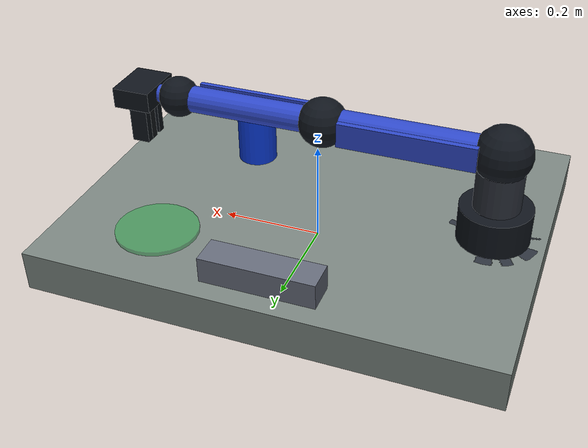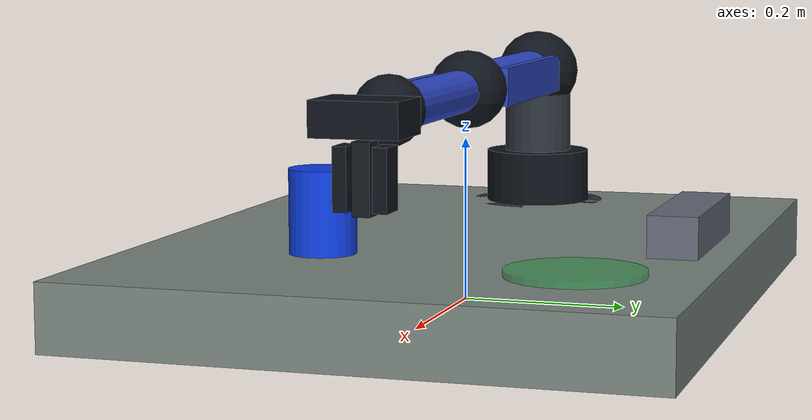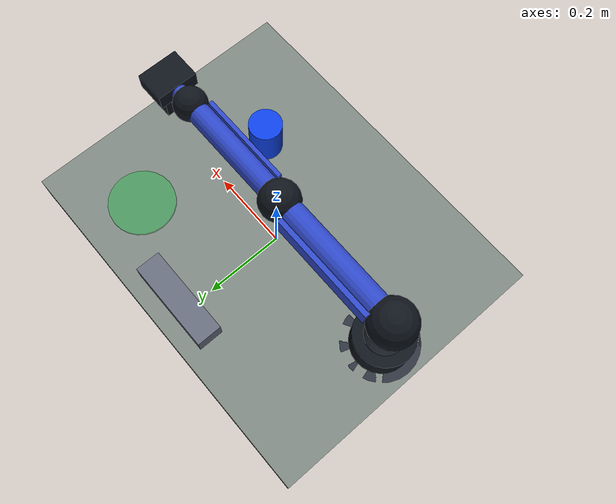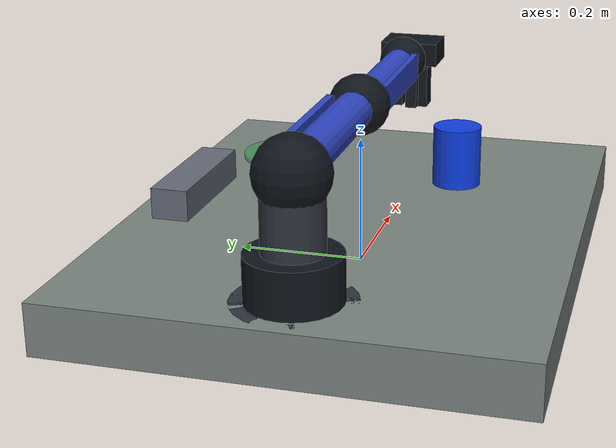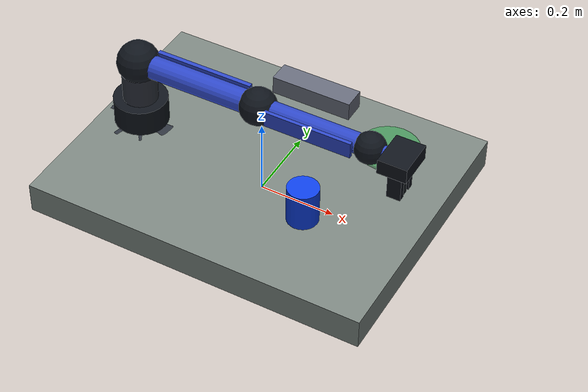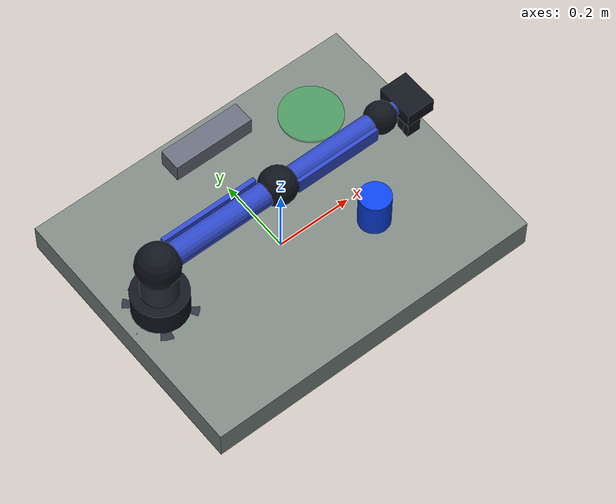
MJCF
<mujoco model="text2mujoco_arm_pick_place_108be4f5957f">
  <!--generator=text2mujoco-0.1.0; arm_schema=1.0; seed=11; run_id=108be4f5957f; contact_only_grasp=true-->
  <compiler angle="radian" coordinate="local" />
  <option gravity="0 0 -9.81" timestep="0.002" integrator="implicitfast" cone="elliptic" iterations="100" ls_iterations="50" />
  <default>
    <geom condim="4" friction="0.45 0.02 0.001" solref="0.003 1" solimp="0.95 0.99 0.0005" />
    <joint damping="2.2" armature="0.015" />
  </default>
  <asset>
    <material name="table_mat" rgba="0.48 0.52 0.5 1" />
    <material name="base_mat" rgba="0.18 0.2 0.24 1" />
    <material name="joint_mat" rgba="0.06 0.08 0.11 1" />
    <material name="arm_mat" rgba="0.18 0.28 0.78 1" />
    <material name="cube_mat" rgba="0.05 0.25 0.9 1" />
    <material name="target_mat" rgba="0.1 0.68 0.24 0.45" />
    <material name="finger_mat" rgba="0.08 0.1 0.12 1" />
  </asset>
  <worldbody>
    <light name="arm_key_light" pos="0 -1.8 2.5" dir="0 1 -1" />
    <camera name="arm_overview" pos="0 -1.45 0.95" xyaxes="1 0 0 0 0.55 0.83" />
    <geom name="table" type="box" pos="0 0 0.04" size="0.45 0.35 0.04" material="table_mat" />
    <body name="prop_shelf" pos="0 0.28 0.105">
      <geom name="prop_shelf_geom" type="box" size="0.11 0.03 0.025" rgba="0.4 0.42 0.48 1" friction="0.45 0.02 0.001" />
    </body>
    <body name="arm_target" pos="0.25 0.2 0.084">
      <geom name="arm_target_visual" type="cylinder" size="0.08 0.004" material="target_mat" contype="0" conaffinity="0" />
    </body>
    <body name="cube" pos="0.18 -0.12 0.13">
      <freejoint name="cube_free" />
      <geom name="cube_collision" type="cylinder" size="0.04 0.05" mass="0.12" material="cube_mat" friction="0.45 0.02 0.001" solref="0.002 1" solimp="0.96 0.995 0.0005" />
    </body>
    <body name="arm_base" pos="-0.35 0 0.08">
      <geom name="base_pedestal" type="cylinder" pos="0 0 -0.035" size="0.09 0.035" material="base_mat" contype="0" conaffinity="0" />
      <joint name="base_yaw" type="hinge" axis="0 0 1" range="-2.7 2.7" />
      <geom name="base_turntable" type="cylinder" pos="0 0 0.035" size="0.07 0.035" material="joint_mat" contype="0" conaffinity="0" />
      <geom name="base_column" type="cylinder" pos="0 0 0.09" size="0.045 0.09" material="base_mat" contype="0" conaffinity="0" />
      <body name="shoulder_link" pos="0 0 0.18">
        <geom name="shoulder_hub" type="sphere" size="0.055" material="joint_mat" contype="0" conaffinity="0" />
        <joint name="shoulder" type="hinge" axis="0 1 0" range="-1.4 1.6" />
        <geom name="upper_arm_link" type="capsule" fromto="0.035 0 0 0.305 0 0" size="0.03" material="arm_mat" contype="0" conaffinity="0" />
        <geom name="upper_arm_side_plate" type="box" pos="0.17 0.034 0" size="0.13076923 0.006 0.024" material="arm_mat" contype="0" conaffinity="0" />
        <body name="elbow_link" pos="0.34 0 0">
          <geom name="elbow_hub" type="sphere" size="0.048" material="joint_mat" contype="0" conaffinity="0" />
          <joint name="elbow" type="hinge" axis="0 1 0" range="-2.5 0.2" />
          <geom name="forearm_link" type="capsule" fromto="0.032 0 0 0.268 0 0" size="0.026" material="arm_mat" contype="0" conaffinity="0" />
          <geom name="forearm_side_plate" type="box" pos="0.15 -0.03 0" size="0.11538462 0.005 0.021" material="arm_mat" contype="0" conaffinity="0" />
          <body name="wrist_link" pos="0.3 0 0">
            <geom name="wrist_hub" type="sphere" size="0.04" material="joint_mat" contype="0" conaffinity="0" />
            <joint name="wrist" type="hinge" axis="0 1 0" range="-1.8 1.8" />
            <geom name="wrist_short_link" type="capsule" fromto="0.01 0 0 0.08 0 0" size="0.018" material="arm_mat" contype="0" conaffinity="0" />
            <body name="gripper_palm" pos="0.08 0 0">
              <geom name="gripper_palm_geom" type="box" size="0.038 0.05 0.02" material="joint_mat" contype="0" conaffinity="0" />
              <body name="left_finger_body" pos="0 0 -0.03">
                <joint name="left_finger" type="slide" axis="0 1 0" range="0.0175 0.055" />
                <geom name="left_finger_geom" type="box" pos="0 0 -0.035" size="0.014 0.01 0.04" material="finger_mat" contype="0" conaffinity="0" />
                <geom name="left_finger_pad" type="box" pos="0 0.0225 -0.035" size="0.018 0.008 0.035" material="joint_mat" friction="5 0.2 0.02" solref="0.002 1" solimp="0.96 0.995 0.0005" />
              </body>
              <body name="right_finger_body" pos="0 0 -0.03">
                <joint name="right_finger" type="slide" axis="0 -1 0" range="0.0175 0.055" />
                <geom name="right_finger_geom" type="box" pos="0 0 -0.035" size="0.014 0.01 0.04" material="finger_mat" contype="0" conaffinity="0" />
                <geom name="right_finger_pad" type="box" pos="0 -0.0225 -0.035" size="0.018 0.008 0.035" material="joint_mat" friction="5 0.2 0.02" solref="0.002 1" solimp="0.96 0.995 0.0005" />
              </body>
            </body>
          </body>
        </body>
      </body>
    </body>
  </worldbody>
  <actuator>
    <position name="move_base_yaw" joint="base_yaw" kp="180" kv="25" ctrllimited="true" ctrlrange="-2.7 2.7" forcelimited="true" forcerange="-140 140" />
    <position name="move_shoulder" joint="shoulder" kp="220" kv="35" ctrllimited="true" ctrlrange="-1.4 1.6" forcelimited="true" forcerange="-140 140" />
    <position name="move_elbow" joint="elbow" kp="190" kv="30" ctrllimited="true" ctrlrange="-2.5 0.2" forcelimited="true" forcerange="-140 140" />
    <position name="move_wrist" joint="wrist" kp="120" kv="18" ctrllimited="true" ctrlrange="-1.8 1.8" forcelimited="true" forcerange="-140 140" />
    <position name="move_left_finger" joint="left_finger" kp="160" kv="10" ctrllimited="true" ctrlrange="0.0175 0.055" forcelimited="true" forcerange="-140 140" />
    <position name="move_right_finger" joint="right_finger" kp="160" kv="10" ctrllimited="true" ctrlrange="0.0175 0.055" forcelimited="true" forcerange="-140 140" />
  </actuator>
</mujoco>
